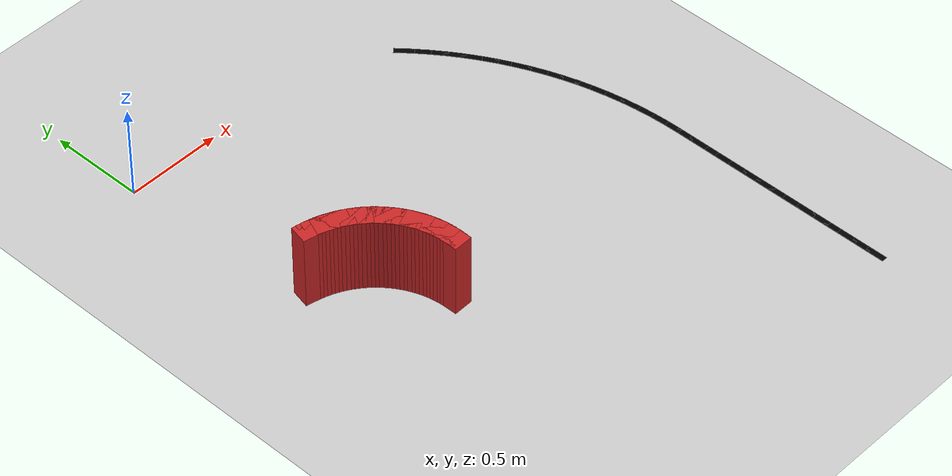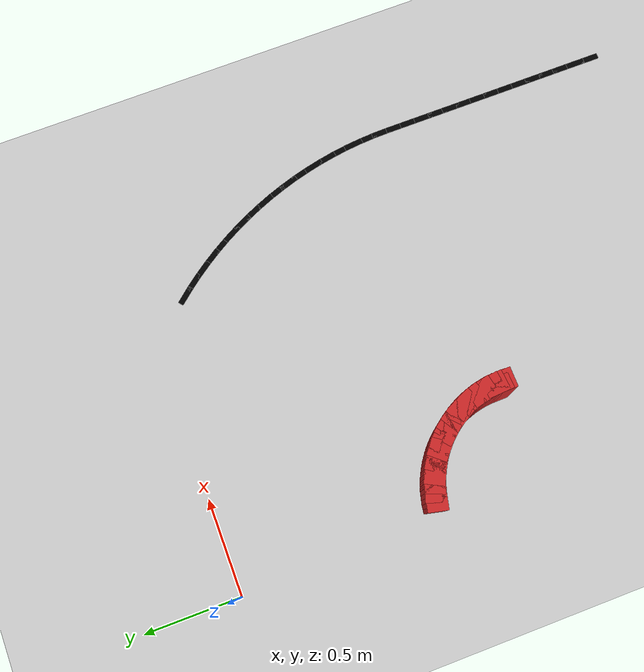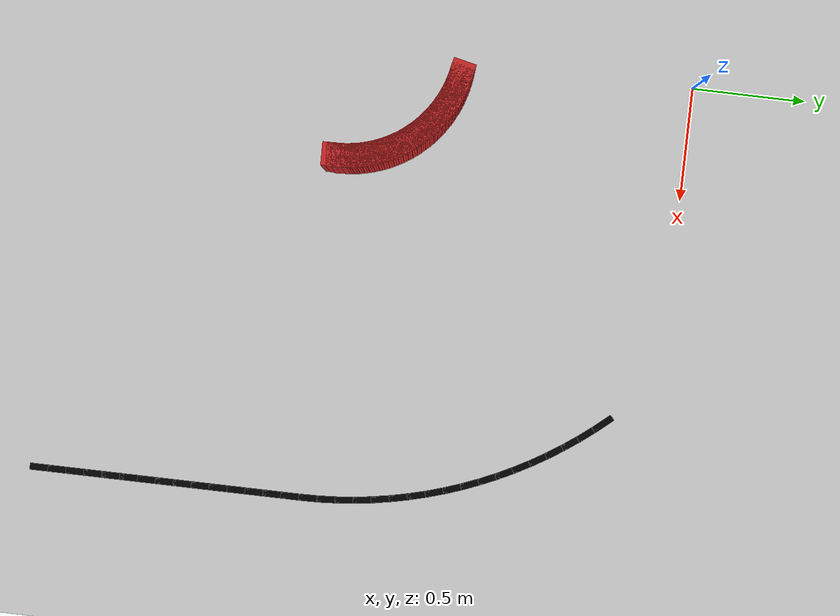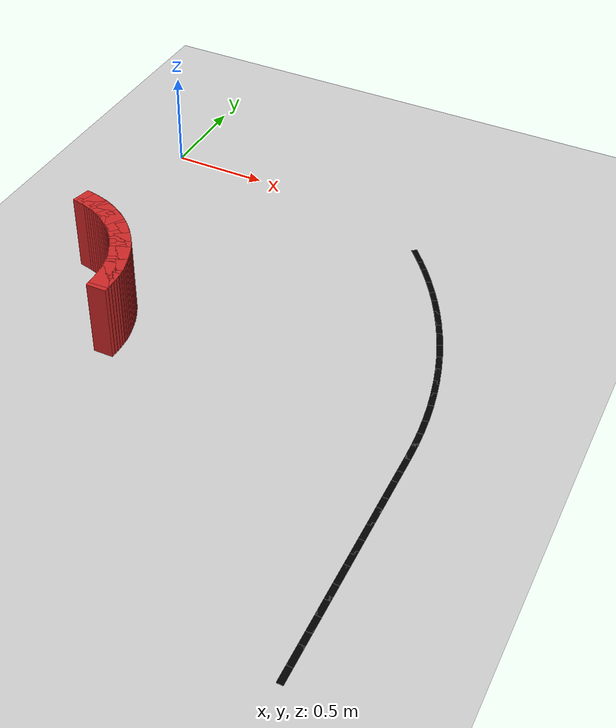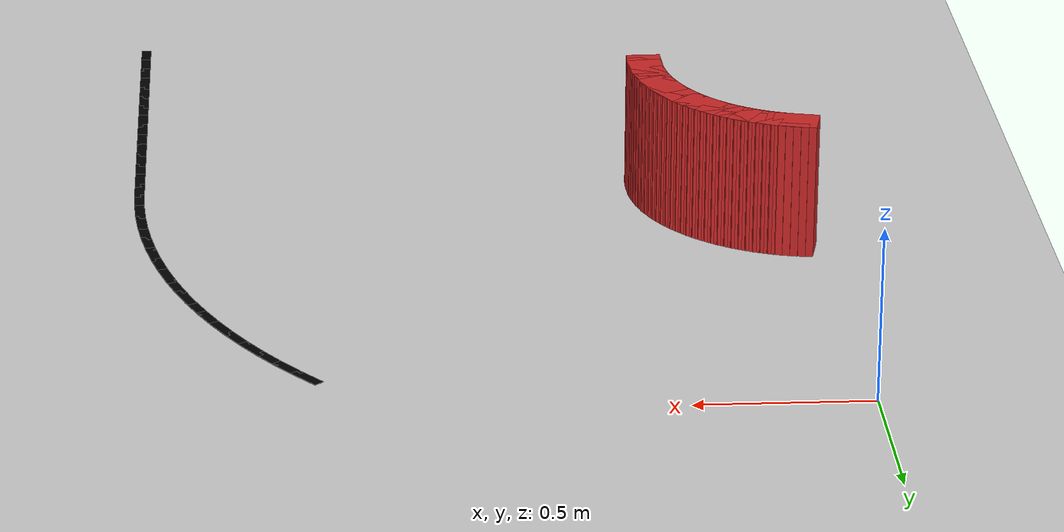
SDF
<sdf version="1.6">
 <world name="new_race_track">
  <include><uri>model://ground_plane</uri></include>
  <include><uri>model://sun</uri></include>
  <model name="race_track">
   <static>true</static>
   <link name="wall_link_537">
    <collision name="c"><geometry><box><size>0.1305 0.1 0.4</size></box></geometry></collision>
    <visual name="v">
     <geometry><box><size>0.1305 0.1 0.4</size></box></geometry>
     <material><ambient>0.8 0.15 0.15 1</ambient><diffuse>0.8 0.15 0.15 1</diffuse></material>
    </visual>
    <pose>0.1098 -1.0326 0.200 0 0 -0.2215</pose>
   </link>
   <link name="wall_link_538">
    <collision name="c"><geometry><box><size>0.1305 0.1 0.4</size></box></geometry></collision>
    <visual name="v">
     <geometry><box><size>0.1305 0.1 0.4</size></box></geometry>
     <material><ambient>0.8 0.15 0.15 1</ambient><diffuse>0.8 0.15 0.15 1</diffuse></material>
    </visual>
    <pose>0.1293 -1.0374 0.200 0 0 -0.2618</pose>
   </link>
   <link name="wall_link_539">
    <collision name="c"><geometry><box><size>0.1305 0.1 0.4</size></box></geometry></collision>
    <visual name="v">
     <geometry><box><size>0.1305 0.1 0.4</size></box></geometry>
     <material><ambient>0.8 0.15 0.15 1</ambient><diffuse>0.8 0.15 0.15 1</diffuse></material>
    </visual>
    <pose>0.1486 -1.0430 0.200 0 0 -0.3021</pose>
   </link>
   <link name="wall_link_540">
    <collision name="c"><geometry><box><size>0.1305 0.1 0.4</size></box></geometry></collision>
    <visual name="v">
     <geometry><box><size>0.1305 0.1 0.4</size></box></geometry>
     <material><ambient>0.8 0.15 0.15 1</ambient><diffuse>0.8 0.15 0.15 1</diffuse></material>
    </visual>
    <pose>0.1677 -1.0494 0.200 0 0 -0.3424</pose>
   </link>
   <link name="wall_link_541">
    <collision name="c"><geometry><box><size>0.1305 0.1 0.4</size></box></geometry></collision>
    <visual name="v">
     <geometry><box><size>0.1305 0.1 0.4</size></box></geometry>
     <material><ambient>0.8 0.15 0.15 1</ambient><diffuse>0.8 0.15 0.15 1</diffuse></material>
    </visual>
    <pose>0.1865 -1.0565 0.200 0 0 -0.3826</pose>
   </link>
   <link name="wall_link_542">
    <collision name="c"><geometry><box><size>0.1305 0.1 0.4</size></box></geometry></collision>
    <visual name="v">
     <geometry><box><size>0.1305 0.1 0.4</size></box></geometry>
     <material><ambient>0.8 0.15 0.15 1</ambient><diffuse>0.8 0.15 0.15 1</diffuse></material>
    </visual>
    <pose>0.2050 -1.0644 0.200 0 0 -0.4229</pose>
   </link>
   <link name="wall_link_543">
    <collision name="c"><geometry><box><size>0.1305 0.1 0.4</size></box></geometry></collision>
    <visual name="v">
     <geometry><box><size>0.1305 0.1 0.4</size></box></geometry>
     <material><ambient>0.8 0.15 0.15 1</ambient><diffuse>0.8 0.15 0.15 1</diffuse></material>
    </visual>
    <pose>0.2232 -1.0730 0.200 0 0 -0.4632</pose>
   </link>
   <link name="wall_link_544">
    <collision name="c"><geometry><box><size>0.1305 0.1 0.4</size></box></geometry></collision>
    <visual name="v">
     <geometry><box><size>0.1305 0.1 0.4</size></box></geometry>
     <material><ambient>0.8 0.15 0.15 1</ambient><diffuse>0.8 0.15 0.15 1</diffuse></material>
    </visual>
    <pose>0.2410 -1.0824 0.200 0 0 -0.5035</pose>
   </link>
   <link name="wall_link_545">
    <collision name="c"><geometry><box><size>0.1305 0.1 0.4</size></box></geometry></collision>
    <visual name="v">
     <geometry><box><size>0.1305 0.1 0.4</size></box></geometry>
     <material><ambient>0.8 0.15 0.15 1</ambient><diffuse>0.8 0.15 0.15 1</diffuse></material>
    </visual>
    <pose>0.2585 -1.0925 0.200 0 0 -0.5437</pose>
   </link>
   <link name="wall_link_546">
    <collision name="c"><geometry><box><size>0.1305 0.1 0.4</size></box></geometry></collision>
    <visual name="v">
     <geometry><box><size>0.1305 0.1 0.4</size></box></geometry>
     <material><ambient>0.8 0.15 0.15 1</ambient><diffuse>0.8 0.15 0.15 1</diffuse></material>
    </visual>
    <pose>0.2755 -1.1032 0.200 0 0 -0.5840</pose>
   </link>
   <link name="wall_link_547">
    <collision name="c"><geometry><box><size>0.1305 0.1 0.4</size></box></geometry></collision>
    <visual name="v">
     <geometry><box><size>0.1305 0.1 0.4</size></box></geometry>
     <material><ambient>0.8 0.15 0.15 1</ambient><diffuse>0.8 0.15 0.15 1</diffuse></material>
    </visual>
    <pose>0.2920 -1.1146 0.200 0 0 -0.6243</pose>
   </link>
   <link name="wall_link_548">
    <collision name="c"><geometry><box><size>0.1305 0.1 0.4</size></box></geometry></collision>
    <visual name="v">
     <geometry><box><size>0.1305 0.1 0.4</size></box></geometry>
     <material><ambient>0.8 0.15 0.15 1</ambient><diffuse>0.8 0.15 0.15 1</diffuse></material>
    </visual>
    <pose>0.3081 -1.1267 0.200 0 0 -0.6646</pose>
   </link>
   <link name="wall_link_549">
    <collision name="c"><geometry><box><size>0.1305 0.1 0.4</size></box></geometry></collision>
    <visual name="v">
     <geometry><box><size>0.1305 0.1 0.4</size></box></geometry>
     <material><ambient>0.8 0.15 0.15 1</ambient><diffuse>0.8 0.15 0.15 1</diffuse></material>
    </visual>
    <pose>0.3237 -1.1395 0.200 0 0 -0.7048</pose>
   </link>
   <link name="wall_link_550">
    <collision name="c"><geometry><box><size>0.1305 0.1 0.4</size></box></geometry></collision>
    <visual name="v">
     <geometry><box><size>0.1305 0.1 0.4</size></box></geometry>
     <material><ambient>0.8 0.15 0.15 1</ambient><diffuse>0.8 0.15 0.15 1</diffuse></material>
    </visual>
    <pose>0.3388 -1.1528 0.200 0 0 -0.7451</pose>
   </link>
   <link name="wall_link_551">
    <collision name="c"><geometry><box><size>0.1305 0.1 0.4</size></box></geometry></collision>
    <visual name="v">
     <geometry><box><size>0.1305 0.1 0.4</size></box></geometry>
     <material><ambient>0.8 0.15 0.15 1</ambient><diffuse>0.8 0.15 0.15 1</diffuse></material>
    </visual>
    <pose>0.3533 -1.1667 0.200 0 0 -0.7854</pose>
   </link>
   <link name="wall_link_552">
    <collision name="c"><geometry><box><size>0.1305 0.1 0.4</size></box></geometry></collision>
    <visual name="v">
     <geometry><box><size>0.1305 0.1 0.4</size></box></geometry>
     <material><ambient>0.8 0.15 0.15 1</ambient><diffuse>0.8 0.15 0.15 1</diffuse></material>
    </visual>
    <pose>0.3672 -1.1812 0.200 0 0 -0.8257</pose>
   </link>
   <link name="wall_link_553">
    <collision name="c"><geometry><box><size>0.1305 0.1 0.4</size></box></geometry></collision>
    <visual name="v">
     <geometry><box><size>0.1305 0.1 0.4</size></box></geometry>
     <material><ambient>0.8 0.15 0.15 1</ambient><diffuse>0.8 0.15 0.15 1</diffuse></material>
    </visual>
    <pose>0.3805 -1.1963 0.200 0 0 -0.8660</pose>
   </link>
   <link name="wall_link_554">
    <collision name="c"><geometry><box><size>0.1305 0.1 0.4</size></box></geometry></collision>
    <visual name="v">
     <geometry><box><size>0.1305 0.1 0.4</size></box></geometry>
     <material><ambient>0.8 0.15 0.15 1</ambient><diffuse>0.8 0.15 0.15 1</diffuse></material>
    </visual>
    <pose>0.3933 -1.2119 0.200 0 0 -0.9062</pose>
   </link>
   <link name="wall_link_555">
    <collision name="c"><geometry><box><size>0.1305 0.1 0.4</size></box></geometry></collision>
    <visual name="v">
     <geometry><box><size>0.1305 0.1 0.4</size></box></geometry>
     <material><ambient>0.8 0.15 0.15 1</ambient><diffuse>0.8 0.15 0.15 1</diffuse></material>
    </visual>
    <pose>0.4054 -1.2280 0.200 0 0 -0.9465</pose>
   </link>
   <link name="wall_link_556">
    <collision name="c"><geometry><box><size>0.1305 0.1 0.4</size></box></geometry></collision>
    <visual name="v">
     <geometry><box><size>0.1305 0.1 0.4</size></box></geometry>
     <material><ambient>0.8 0.15 0.15 1</ambient><diffuse>0.8 0.15 0.15 1</diffuse></material>
    </visual>
    <pose>0.4168 -1.2445 0.200 0 0 -0.9868</pose>
   </link>
   <link name="wall_link_557">
    <collision name="c"><geometry><box><size>0.1305 0.1 0.4</size></box></geometry></collision>
    <visual name="v">
     <geometry><box><size>0.1305 0.1 0.4</size></box></geometry>
     <material><ambient>0.8 0.15 0.15 1</ambient><diffuse>0.8 0.15 0.15 1</diffuse></material>
    </visual>
    <pose>0.4275 -1.2615 0.200 0 0 -1.0271</pose>
   </link>
   <link name="wall_link_558">
    <collision name="c"><geometry><box><size>0.1305 0.1 0.4</size></box></geometry></collision>
    <visual name="v">
     <geometry><box><size>0.1305 0.1 0.4</size></box></geometry>
     <material><ambient>0.8 0.15 0.15 1</ambient><diffuse>0.8 0.15 0.15 1</diffuse></material>
    </visual>
    <pose>0.4376 -1.2790 0.200 0 0 -1.0673</pose>
   </link>
   <link name="wall_link_559">
    <collision name="c"><geometry><box><size>0.1305 0.1 0.4</size></box></geometry></collision>
    <visual name="v">
     <geometry><box><size>0.1305 0.1 0.4</size></box></geometry>
     <material><ambient>0.8 0.15 0.15 1</ambient><diffuse>0.8 0.15 0.15 1</diffuse></material>
    </visual>
    <pose>0.4470 -1.2968 0.200 0 0 -1.1076</pose>
   </link>
   <link name="wall_link_560">
    <collision name="c"><geometry><box><size>0.1305 0.1 0.4</size></box></geometry></collision>
    <visual name="v">
     <geometry><box><size>0.1305 0.1 0.4</size></box></geometry>
     <material><ambient>0.8 0.15 0.15 1</ambient><diffuse>0.8 0.15 0.15 1</diffuse></material>
    </visual>
    <pose>0.4556 -1.3150 0.200 0 0 -1.1479</pose>
   </link>
   <link name="wall_link_561">
    <collision name="c"><geometry><box><size>0.1305 0.1 0.4</size></box></geometry></collision>
    <visual name="v">
     <geometry><box><size>0.1305 0.1 0.4</size></box></geometry>
     <material><ambient>0.8 0.15 0.15 1</ambient><diffuse>0.8 0.15 0.15 1</diffuse></material>
    </visual>
    <pose>0.4635 -1.3335 0.200 0 0 -1.1882</pose>
   </link>
   <link name="wall_link_562">
    <collision name="c"><geometry><box><size>0.1305 0.1 0.4</size></box></geometry></collision>
    <visual name="v">
     <geometry><box><size>0.1305 0.1 0.4</size></box></geometry>
     <material><ambient>0.8 0.15 0.15 1</ambient><diffuse>0.8 0.15 0.15 1</diffuse></material>
    </visual>
    <pose>0.4706 -1.3523 0.200 0 0 -1.2284</pose>
   </link>
   <link name="wall_link_563">
    <collision name="c"><geometry><box><size>0.1305 0.1 0.4</size></box></geometry></collision>
    <visual name="v">
     <geometry><box><size>0.1305 0.1 0.4</size></box></geometry>
     <material><ambient>0.8 0.15 0.15 1</ambient><diffuse>0.8 0.15 0.15 1</diffuse></material>
    </visual>
    <pose>0.4770 -1.3714 0.200 0 0 -1.2687</pose>
   </link>
   <link name="wall_link_564">
    <collision name="c"><geometry><box><size>0.1305 0.1 0.4</size></box></geometry></collision>
    <visual name="v">
     <geometry><box><size>0.1305 0.1 0.4</size></box></geometry>
     <material><ambient>0.8 0.15 0.15 1</ambient><diffuse>0.8 0.15 0.15 1</diffuse></material>
    </visual>
    <pose>0.4826 -1.3907 0.200 0 0 -1.3090</pose>
   </link>
   <link name="wall_link_565">
    <collision name="c"><geometry><box><size>0.1305 0.1 0.4</size></box></geometry></collision>
    <visual name="v">
     <geometry><box><size>0.1305 0.1 0.4</size></box></geometry>
     <material><ambient>0.8 0.15 0.15 1</ambient><diffuse>0.8 0.15 0.15 1</diffuse></material>
    </visual>
    <pose>0.4874 -1.4102 0.200 0 0 -1.3493</pose>
   </link>
   <link name="wall_link_566">
    <collision name="c"><geometry><box><size>0.1305 0.1 0.4</size></box></geometry></collision>
    <visual name="v">
     <geometry><box><size>0.1305 0.1 0.4</size></box></geometry>
     <material><ambient>0.8 0.15 0.15 1</ambient><diffuse>0.8 0.15 0.15 1</diffuse></material>
    </visual>
    <pose>0.4914 -1.4299 0.200 0 0 -1.3896</pose>
   </link>
   <link name="wall_link_567">
    <collision name="c"><geometry><box><size>0.1305 0.1 0.4</size></box></geometry></collision>
    <visual name="v">
     <geometry><box><size>0.1305 0.1 0.4</size></box></geometry>
     <material><ambient>0.8 0.15 0.15 1</ambient><diffuse>0.8 0.15 0.15 1</diffuse></material>
    </visual>
    <pose>0.4946 -1.4498 0.200 0 0 -1.4298</pose>
   </link>
   <link name="wall_link_568">
    <collision name="c"><geometry><box><size>0.1305 0.1 0.4</size></box></geometry></collision>
    <visual name="v">
     <geometry><box><size>0.1305 0.1 0.4</size></box></geometry>
     <material><ambient>0.8 0.15 0.15 1</ambient><diffuse>0.8 0.15 0.15 1</diffuse></material>
    </visual>
    <pose>0.4971 -1.4698 0.200 0 0 -1.4701</pose>
   </link>
   <link name="wall_link_569">
    <collision name="c"><geometry><box><size>0.1305 0.1 0.4</size></box></geometry></collision>
    <visual name="v">
     <geometry><box><size>0.1305 0.1 0.4</size></box></geometry>
     <material><ambient>0.8 0.15 0.15 1</ambient><diffuse>0.8 0.15 0.15 1</diffuse></material>
    </visual>
    <pose>0.4987 -1.4898 0.200 0 0 -1.5104</pose>
   </link>
   <link name="wall_link_570">
    <collision name="c"><geometry><box><size>0.1305 0.1 0.4</size></box></geometry></collision>
    <visual name="v">
     <geometry><box><size>0.1305 0.1 0.4</size></box></geometry>
     <material><ambient>0.8 0.15 0.15 1</ambient><diffuse>0.8 0.15 0.15 1</diffuse></material>
    </visual>
    <pose>0.4995 -1.5099 0.200 0 0 -1.5507</pose>
   </link>
   <link name="line_link_1068">
    <visual name="v">
     <geometry><box><size>0.1005 0.03 0.002</size></box></geometry>
     <material><ambient>0 0 0 1</ambient><diffuse>0 0 0 1</diffuse></material>
    </visual>
    <pose>1.5231 -0.2244 0.002 0 0 -0.8660</pose>
   </link>
   <link name="line_link_1069">
    <visual name="v">
     <geometry><box><size>0.1005 0.03 0.002</size></box></geometry>
     <material><ambient>0 0 0 1</ambient><diffuse>0 0 0 1</diffuse></material>
    </visual>
    <pose>1.5740 -0.2868 0.002 0 0 -0.9062</pose>
   </link>
   <link name="line_link_1070">
    <visual name="v">
     <geometry><box><size>0.1005 0.03 0.002</size></box></geometry>
     <material><ambient>0 0 0 1</ambient><diffuse>0 0 0 1</diffuse></material>
    </visual>
    <pose>1.6224 -0.3512 0.002 0 0 -0.9465</pose>
   </link>
   <link name="line_link_1071">
    <visual name="v">
     <geometry><box><size>0.1005 0.03 0.002</size></box></geometry>
     <material><ambient>0 0 0 1</ambient><diffuse>0 0 0 1</diffuse></material>
    </visual>
    <pose>1.6682 -0.4175 0.002 0 0 -0.9868</pose>
   </link>
   <link name="line_link_1072">
    <visual name="v">
     <geometry><box><size>0.1005 0.03 0.002</size></box></geometry>
     <material><ambient>0 0 0 1</ambient><diffuse>0 0 0 1</diffuse></material>
    </visual>
    <pose>1.7112 -0.4855 0.002 0 0 -1.0271</pose>
   </link>
   <link name="line_link_1073">
    <visual name="v">
     <geometry><box><size>0.1005 0.03 0.002</size></box></geometry>
     <material><ambient>0 0 0 1</ambient><diffuse>0 0 0 1</diffuse></material>
    </visual>
    <pose>1.7515 -0.5553 0.002 0 0 -1.0673</pose>
   </link>
   <link name="line_link_1074">
    <visual name="v">
     <geometry><box><size>0.1005 0.03 0.002</size></box></geometry>
     <material><ambient>0 0 0 1</ambient><diffuse>0 0 0 1</diffuse></material>
    </visual>
    <pose>1.7889 -0.6266 0.002 0 0 -1.1076</pose>
   </link>
   <link name="line_link_1075">
    <visual name="v">
     <geometry><box><size>0.1005 0.03 0.002</size></box></geometry>
     <material><ambient>0 0 0 1</ambient><diffuse>0 0 0 1</diffuse></material>
    </visual>
    <pose>1.8234 -0.6993 0.002 0 0 -1.1479</pose>
   </link>
   <link name="line_link_1076">
    <visual name="v">
     <geometry><box><size>0.1005 0.03 0.002</size></box></geometry>
     <material><ambient>0 0 0 1</ambient><diffuse>0 0 0 1</diffuse></material>
    </visual>
    <pose>1.8550 -0.7734 0.002 0 0 -1.1882</pose>
   </link>
   <link name="line_link_1077">
    <visual name="v">
     <geometry><box><size>0.1005 0.03 0.002</size></box></geometry>
     <material><ambient>0 0 0 1</ambient><diffuse>0 0 0 1</diffuse></material>
    </visual>
    <pose>1.8836 -0.8487 0.002 0 0 -1.2284</pose>
   </link>
   <link name="line_link_1078">
    <visual name="v">
     <geometry><box><size>0.1005 0.03 0.002</size></box></geometry>
     <material><ambient>0 0 0 1</ambient><diffuse>0 0 0 1</diffuse></material>
    </visual>
    <pose>1.9091 -0.9251 0.002 0 0 -1.2687</pose>
   </link>
   <link name="line_link_1079">
    <visual name="v">
     <geometry><box><size>0.1005 0.03 0.002</size></box></geometry>
     <material><ambient>0 0 0 1</ambient><diffuse>0 0 0 1</diffuse></material>
    </visual>
    <pose>1.9315 -1.0025 0.002 0 0 -1.3090</pose>
   </link>
   <link name="line_link_1080">
    <visual name="v">
     <geometry><box><size>0.1005 0.03 0.002</size></box></geometry>
     <material><ambient>0 0 0 1</ambient><diffuse>0 0 0 1</diffuse></material>
    </visual>
    <pose>1.9507 -1.0807 0.002 0 0 -1.3493</pose>
   </link>
   <link name="line_link_1081">
    <visual name="v">
     <geometry><box><size>0.1005 0.03 0.002</size></box></geometry>
     <material><ambient>0 0 0 1</ambient><diffuse>0 0 0 1</diffuse></material>
    </visual>
    <pose>1.9668 -1.1596 0.002 0 0 -1.3896</pose>
   </link>
   <link name="line_link_1082">
    <visual name="v">
     <geometry><box><size>0.1005 0.03 0.002</size></box></geometry>
     <material><ambient>0 0 0 1</ambient><diffuse>0 0 0 1</diffuse></material>
    </visual>
    <pose>1.9798 -1.2391 0.002 0 0 -1.4298</pose>
   </link>
   <link name="line_link_1083">
    <visual name="v">
     <geometry><box><size>0.1005 0.03 0.002</size></box></geometry>
     <material><ambient>0 0 0 1</ambient><diffuse>0 0 0 1</diffuse></material>
    </visual>
    <pose>1.9895 -1.3190 0.002 0 0 -1.4701</pose>
   </link>
   <link name="line_link_1084">
    <visual name="v">
     <geometry><box><size>0.1005 0.03 0.002</size></box></geometry>
     <material><ambient>0 0 0 1</ambient><diffuse>0 0 0 1</diffuse></material>
    </visual>
    <pose>1.9959 -1.3993 0.002 0 0 -1.5104</pose>
   </link>
   <link name="line_link_1085">
    <visual name="v">
     <geometry><box><size>0.1005 0.03 0.002</size></box></geometry>
     <material><ambient>0 0 0 1</ambient><diffuse>0 0 0 1</diffuse></material>
    </visual>
    <pose>1.9992 -1.4797 0.002 0 0 -1.5507</pose>
   </link>
   <link name="line_link_1086">
    <visual name="v">
     <geometry><box><size>0.1000 0.03 0.002</size></box></geometry>
     <material><ambient>0 0 0 1</ambient><diffuse>0 0 0 1</diffuse></material>
    </visual>
    <pose>2.0000 -1.5600 0.002 0 0 -1.5708</pose>
   </link>
   <link name="line_link_1087">
    <visual name="v">
     <geometry><box><size>0.1000 0.03 0.002</size></box></geometry>
     <material><ambient>0 0 0 1</ambient><diffuse>0 0 0 1</diffuse></material>
    </visual>
    <pose>2.0000 -1.6400 0.002 0 0 -1.5708</pose>
   </link>
   <link name="line_link_1088">
    <visual name="v">
     <geometry><box><size>0.1000 0.03 0.002</size></box></geometry>
     <material><ambient>0 0 0 1</ambient><diffuse>0 0 0 1</diffuse></material>
    </visual>
    <pose>2.0000 -1.7200 0.002 0 0 -1.5708</pose>
   </link>
   <link name="line_link_1089">
    <visual name="v">
     <geometry><box><size>0.1000 0.03 0.002</size></box></geometry>
     <material><ambient>0 0 0 1</ambient><diffuse>0 0 0 1</diffuse></material>
    </visual>
    <pose>2.0000 -1.8000 0.002 0 0 -1.5708</pose>
   </link>
   <link name="line_link_1090">
    <visual name="v">
     <geometry><box><size>0.1000 0.03 0.002</size></box></geometry>
     <material><ambient>0 0 0 1</ambient><diffuse>0 0 0 1</diffuse></material>
    </visual>
    <pose>2.0000 -1.8800 0.002 0 0 -1.5708</pose>
   </link>
   <link name="line_link_1091">
    <visual name="v">
     <geometry><box><size>0.1000 0.03 0.002</size></box></geometry>
     <material><ambient>0 0 0 1</ambient><diffuse>0 0 0 1</diffuse></material>
    </visual>
    <pose>2.0000 -1.9600 0.002 0 0 -1.5708</pose>
   </link>
   <link name="line_link_1092">
    <visual name="v">
     <geometry><box><size>0.1000 0.03 0.002</size></box></geometry>
     <material><ambient>0 0 0 1</ambient><diffuse>0 0 0 1</diffuse></material>
    </visual>
    <pose>2.0000 -2.0400 0.002 0 0 -1.5708</pose>
   </link>
   <link name="line_link_1093">
    <visual name="v">
     <geometry><box><size>0.1000 0.03 0.002</size></box></geometry>
     <material><ambient>0 0 0 1</ambient><diffuse>0 0 0 1</diffuse></material>
    </visual>
    <pose>2.0000 -2.1200 0.002 0 0 -1.5708</pose>
   </link>
   <link name="line_link_1094">
    <visual name="v">
     <geometry><box><size>0.1000 0.03 0.002</size></box></geometry>
     <material><ambient>0 0 0 1</ambient><diffuse>0 0 0 1</diffuse></material>
    </visual>
    <pose>2.0000 -2.2000 0.002 0 0 -1.5708</pose>
   </link>
   <link name="line_link_1095">
    <visual name="v">
     <geometry><box><size>0.1000 0.03 0.002</size></box></geometry>
     <material><ambient>0 0 0 1</ambient><diffuse>0 0 0 1</diffuse></material>
    </visual>
    <pose>2.0000 -2.2800 0.002 0 0 -1.5708</pose>
   </link>
   <link name="line_link_1096">
    <visual name="v">
     <geometry><box><size>0.1000 0.03 0.002</size></box></geometry>
     <material><ambient>0 0 0 1</ambient><diffuse>0 0 0 1</diffuse></material>
    </visual>
    <pose>2.0000 -2.3600 0.002 0 0 -1.5708</pose>
   </link>
   <link name="line_link_1097">
    <visual name="v">
     <geometry><box><size>0.1000 0.03 0.002</size></box></geometry>
     <material><ambient>0 0 0 1</ambient><diffuse>0 0 0 1</diffuse></material>
    </visual>
    <pose>2.0000 -2.4400 0.002 0 0 -1.5708</pose>
   </link>
   <link name="line_link_1098">
    <visual name="v">
     <geometry><box><size>0.1000 0.03 0.002</size></box></geometry>
     <material><ambient>0 0 0 1</ambient><diffuse>0 0 0 1</diffuse></material>
    </visual>
    <pose>2.0000 -2.5200 0.002 0 0 -1.5708</pose>
   </link>
   <link name="line_link_1099">
    <visual name="v">
     <geometry><box><size>0.1000 0.03 0.002</size></box></geometry>
     <material><ambient>0 0 0 1</ambient><diffuse>0 0 0 1</diffuse></material>
    </visual>
    <pose>2.0000 -2.6000 0.002 0 0 -1.5708</pose>
   </link>
   <link name="line_link_1100">
    <visual name="v">
     <geometry><box><size>0.1000 0.03 0.002</size></box></geometry>
     <material><ambient>0 0 0 1</ambient><diffuse>0 0 0 1</diffuse></material>
    </visual>
    <pose>2.0000 -2.6800 0.002 0 0 -1.5708</pose>
   </link>
  </model>
 </world>
</sdf>
